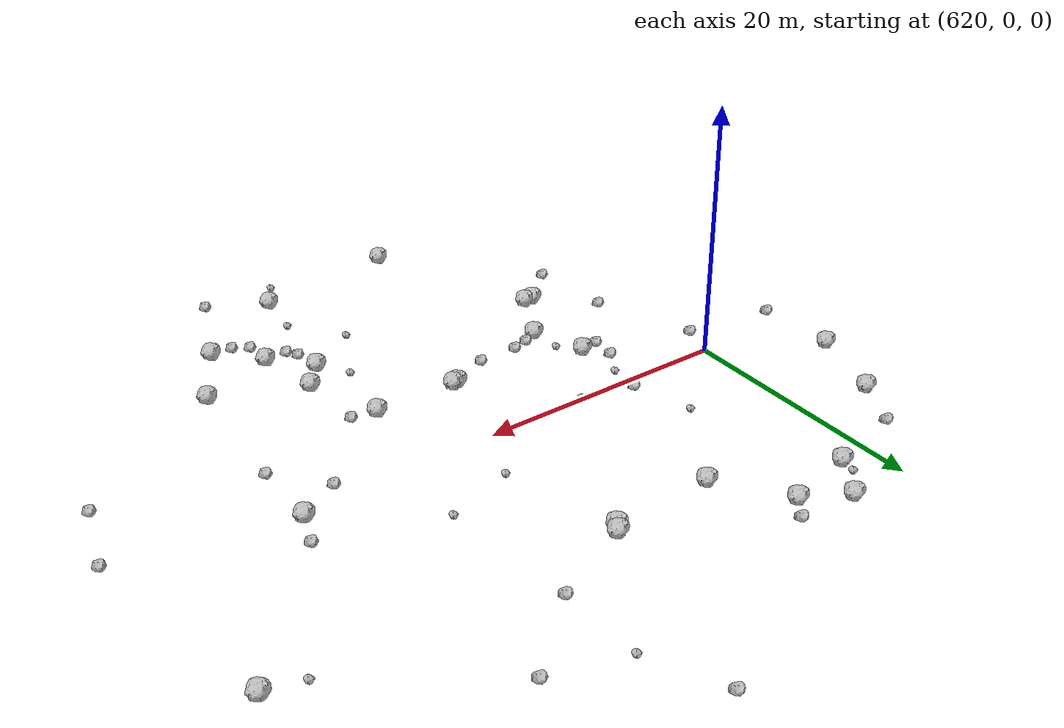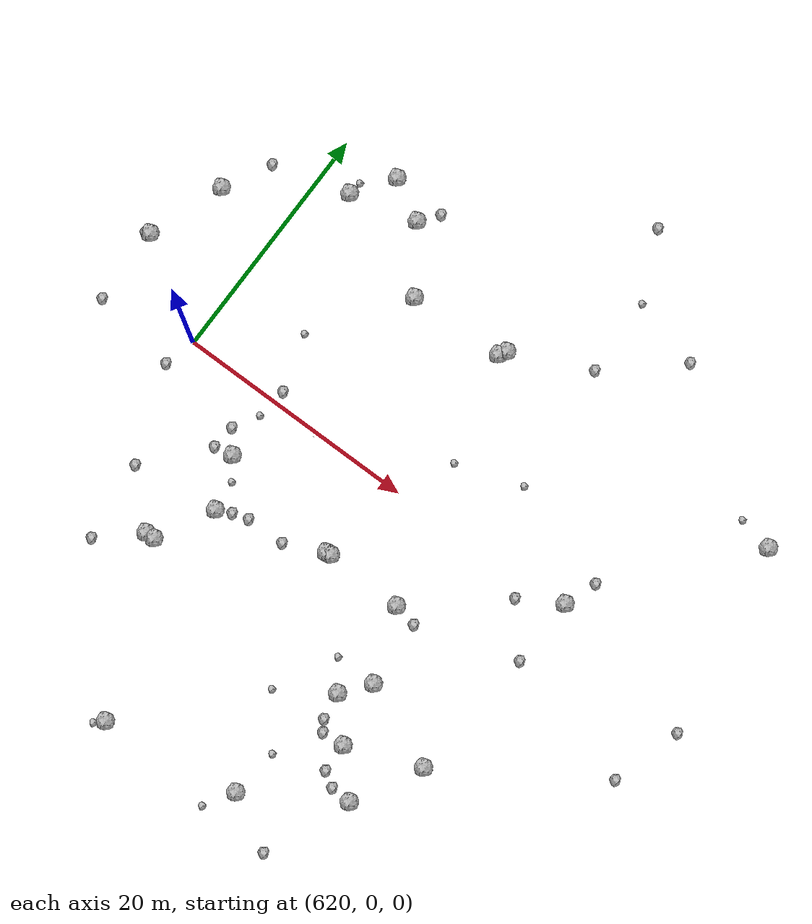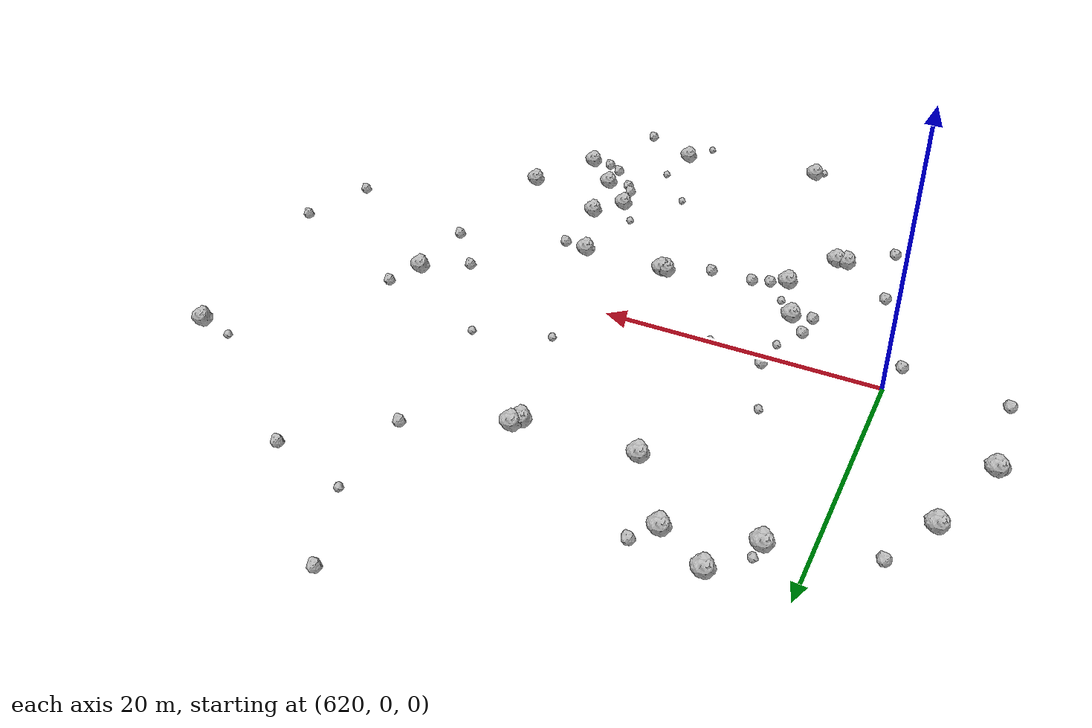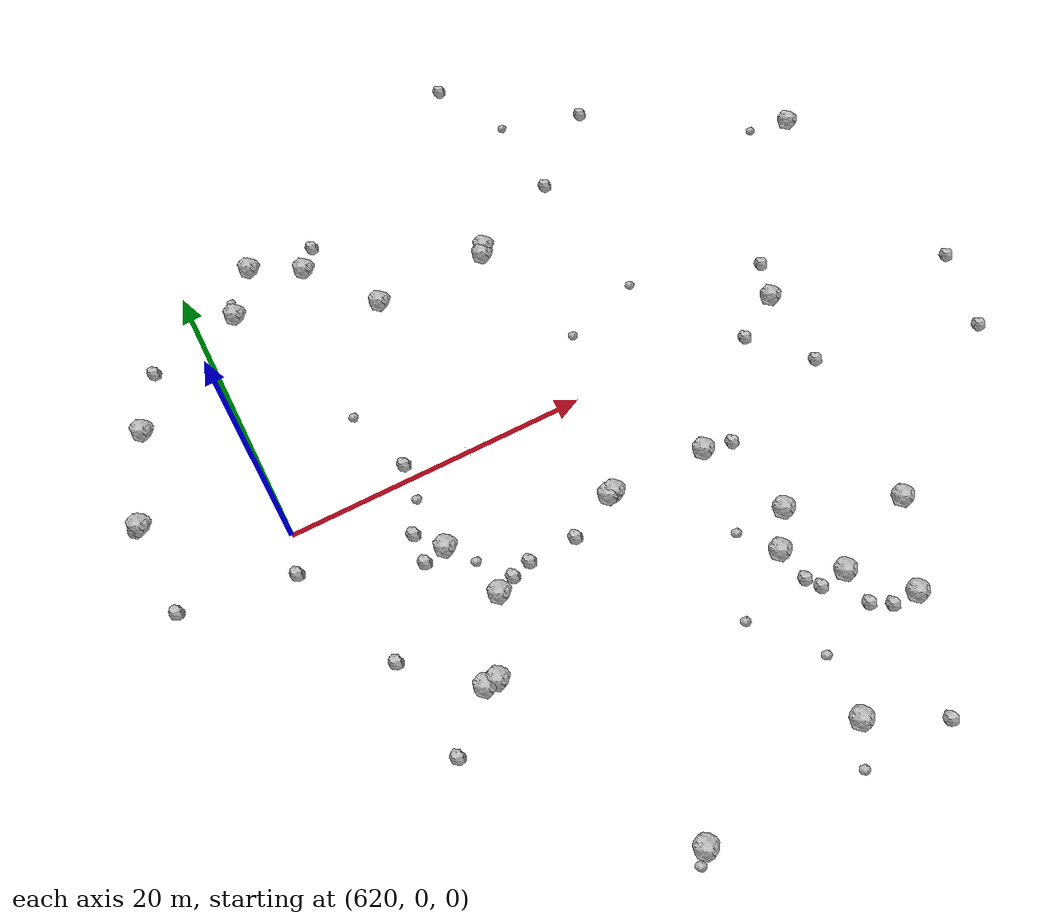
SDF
<sdf version="1.6">
 <world name="default">
  <include><uri>model://sun</uri></include>
  <model name="rock1_16_3">
   <include><uri>model://rock1</uri><pose>645.184223963279 -7.158416719643689 0.5 0 0 0</pose></include>
  </model>
  <model name="rock1_16_4">
   <include><uri>model://rock1</uri><pose>654.2808549519228 -15.91306555644172 0.5 0 0 0</pose></include>
  </model>
  <model name="rock1_16_5">
   <include><uri>model://rock1</uri><pose>647.3512982697109 -13.040447215770598 0.5 0 0 0</pose></include>
  </model>
  <model name="rock1_16_6">
   <include><uri>model://rock1</uri><pose>624.978011408262 20.05931992228546 0.5 0 0 0</pose></include>
  </model>
  <model name="rock1_16_7">
   <include><uri>model://rock1</uri><pose>628.3088314104607 18.204154013835804 0.5 0 0 0</pose></include>
  </model>
  <model name="rock1_16_8">
   <include><uri>model://rock1</uri><pose>665.6137047231888 13.598407059824751 0.5 0 0 0</pose></include>
  </model>
  <model name="rock1_16_9">
   <include><uri>model://rock1</uri><pose>626.1869520709378 -14.147139050641382 0.5 0 0 0</pose></include>
  </model>
  <model name="rock1_16_10">
   <include><uri>model://rock1</uri><pose>622.725477949368 16.840897768645753 0.5 0 0 0</pose></include>
  </model>
  <model name="rock1_16_11">
   <include><uri>model://rock1</uri><pose>612.0574456293614 4.92494065402753 0.5 0 0 0</pose></include>
  </model>
  <model name="rock1_16_12">
   <include><uri>model://rock1</uri><pose>638.7104009253275 -7.010301767099509 0.5 0 0 0</pose></include>
  </model>
  <model name="rock1_16_13">
   <include><uri>model://rock1</uri><pose>645.5829758391136 -15.269566535044454 0.5 0 0 0</pose></include>
  </model>
  <model name="rock1_16_14">
   <include><uri>model://rock1</uri><pose>639.7833441694094 13.399999801528942 0.5 0 0 0</pose></include>
  </model>
  <model name="rock1_16_15">
   <include><uri>model://rock1</uri><pose>629.4307270789877 -9.520268776785812 0.5 0 0 0</pose></include>
  </model>
  <model name="rock1_16_16">
   <include><uri>model://rock1</uri><pose>651.2839073498583 -21.39371891908851 0.5 0 0 0</pose></include>
  </model>
  <model name="rock1_16_17">
   <include><uri>model://rock1</uri><pose>648.3146102809995 -18.213854846935078 0.5 0 0 0</pose></include>
  </model>
  <model name="rock1_16_18">
   <include><uri>model://rock1</uri><pose>626.9665183538259 -14.126910244228753 0.5 0 0 0</pose></include>
  </model>
  <model name="rock1_16_19">
   <include><uri>model://rock1</uri><pose>643.8779136777832 -25.97971697787504 0.5 0 0 0</pose></include>
  </model>
  <model name="rock1_16_20">
   <include><uri>model://rock1</uri><pose>638.3309593525308 -7.053237063512988 0.5 0 0 0</pose></include>
  </model>
  <model name="rock1_16_21">
   <include><uri>model://rock1</uri><pose>631.8061551283555 13.158166369246452 0.5 0 0 0</pose></include>
  </model>
  <model name="rock1_16_22">
   <include><uri>model://rock1</uri><pose>627.8999741047276 -5.321480791683285 0.5 0 0 0</pose></include>
  </model>
  <model name="rock1_16_23">
   <include><uri>model://rock1</uri><pose>640.1714513359095 14.000506917473608 0.5 0 0 0</pose></include>
  </model>
  <model name="rock1_16_24">
   <include><uri>model://rock1</uri><pose>632.5593493753915 -27.595667398039843 0.5 0 0 0</pose></include>
  </model>
  <model name="rock1_16_25">
   <include><uri>model://rock1</uri><pose>655.5354081289428 0.7141678338313469 0.5 0 0 0</pose></include>
  </model>
  <model name="rock1_16_26">
   <include><uri>model://rock1</uri><pose>614.3293566661938 11.202689295116265 0.5 0 0 0</pose></include>
  </model>
  <model name="rock2_16_0">
   <include><uri>model://rock2</uri><pose>666.6116640665798 -7.9235846030345485 0.3 0 0 0</pose></include>
  </model>
  <model name="rock2_16_1">
   <include><uri>model://rock2</uri><pose>648.366404255005 -20.556537926433517 0.3 0 0 0</pose></include>
  </model>
  <model name="rock2_16_2">
   <include><uri>model://rock2</uri><pose>648.3183702211895 -28.37944802548535 0.3 0 0 0</pose></include>
  </model>
  <model name="rock2_16_3">
   <include><uri>model://rock2</uri><pose>652.1593645111894 -1.208391730090625 0.3 0 0 0</pose></include>
  </model>
  <model name="rock2_16_4">
   <include><uri>model://rock2</uri><pose>668.3314475305738 -2.1879337864221178 0.3 0 0 0</pose></include>
  </model>
  <model name="rock2_16_5">
   <include><uri>model://rock2</uri><pose>629.4843495792416 19.783189422289432 0.3 0 0 0</pose></include>
  </model>
  <model name="rock2_16_6">
   <include><uri>model://rock2</uri><pose>647.091911600054 -7.521720993843587 0.3 0 0 0</pose></include>
  </model>
  <model name="rock2_16_7">
   <include><uri>model://rock2</uri><pose>626.3421941643738 -5.585492020690214 0.3 0 0 0</pose></include>
  </model>
  <model name="rock2_16_8">
   <include><uri>model://rock2</uri><pose>616.3637612430392 15.121012470471669 0.3 0 0 0</pose></include>
  </model>
  <model name="rock2_16_9">
   <include><uri>model://rock2</uri><pose>645.8897413703986 -17.471358085604543 0.3 0 0 0</pose></include>
  </model>
  <model name="rock2_16_10">
   <include><uri>model://rock2</uri><pose>652.2031912538663 21.839030655214053 0.3 0 0 0</pose></include>
  </model>
  <model name="rock2_16_11">
   <include><uri>model://rock2</uri><pose>646.4500087496173 -18.340242799514037 0.3 0 0 0</pose></include>
  </model>
  <model name="rock2_16_12">
   <include><uri>model://rock2</uri><pose>626.5136221301932 -3.5820476944143245 0.3 0 0 0</pose></include>
  </model>
  <model name="rock2_16_13">
   <include><uri>model://rock2</uri><pose>628.0082951570895 1.0559462724287911 0.3 0 0 0</pose></include>
  </model>
  <model name="rock2_16_14">
   <include><uri>model://rock2</uri><pose>646.5628519313568 16.911216208514205 0.3 0 0 0</pose></include>
  </model>
  <model name="rock2_16_15">
   <include><uri>model://rock2</uri><pose>630.5969188363416 -8.933751949611032 0.3 0 0 0</pose></include>
  </model>
  <model name="rock2_16_16">
   <include><uri>model://rock2</uri><pose>656.4936870736212 3.405380619462484 0.3 0 0 0</pose></include>
  </model>
  <model name="rock2_16_17">
   <include><uri>model://rock2</uri><pose>655.3261918850302 -4.917528093408055 0.3 0 0 0</pose></include>
  </model>
  <model name="rock2_16_18">
   <include><uri>model://rock2</uri><pose>635.1101373607745 -8.499202832781016 0.3 0 0 0</pose></include>
  </model>
  <model name="rock2_16_19">
   <include><uri>model://rock2</uri><pose>611.6528998803257 4.7841076652933765 0.3 0 0 0</pose></include>
  </model>
  <model name="rock2_16_20">
   <include><uri>model://rock2</uri><pose>619.3055562768478 -2.5820628774121985 0.3 0 0 0</pose></include>
  </model>
  <model name="rock2_16_21">
   <include><uri>model://rock2</uri><pose>612.1476671900193 -1.4412102268198055 0.3 0 0 0</pose></include>
  </model>
  <model name="rock2_16_22">
   <include><uri>model://rock2</uri><pose>643.8522225195914 29.06480292218137 0.3 0 0 0</pose></include>
  </model>
  <model name="rock2_16_23">
   <include><uri>model://rock2</uri><pose>623.0051056742633 -16.963029732750126 0.3 0 0 0</pose></include>
  </model>
  <model name="rock2_16_24">
   <include><uri>model://rock2</uri><pose>622.2506763302372 -10.394119772749178 0.3 0 0 0</pose></include>
  </model>
  <model name="rock2_16_25">
   <include><uri>model://rock2</uri><pose>631.9083805956568 -8.552357208280771 0.3 0 0 0</pose></include>
  </model>
  <model name="rock2_16_26">
   <include><uri>model://rock2</uri><pose>649.5535109362729 -21.301689720038013 0.3 0 0 0</pose></include>
  </model>
  <model name="rock3_16_0">
   <include><uri>model://rock3</uri><pose>642.0878744382981 4.454374496742069 0.2 0 0 0</pose></include>
  </model>
  <model name="rock3_16_1">
   <include><uri>model://rock3</uri><pose>622.8102149184135 17.983201270331755 0.2 0 0 0</pose></include>
  </model>
  <model name="rock3_16_2">
   <include><uri>model://rock3</uri><pose>646.4012971123452 23.39440624049964 0.2 0 0 0</pose></include>
  </model>
  <model name="rock3_16_3">
   <include><uri>model://rock3</uri><pose>632.0274031620954 -0.04380141893335221 0.2 0 0 0</pose></include>
  </model>
  <model name="rock3_16_4">
   <include><uri>model://rock3</uri><pose>644.3129739340399 -22.006664270924688 0.2 0 0 0</pose></include>
  </model>
  <model name="rock3_16_5">
   <include><uri>model://rock3</uri><pose>626.579676486698 5.717054513186447 0.2 0 0 0</pose></include>
  </model>
  <model name="rock3_16_6">
   <include><uri>model://rock3</uri><pose>627.6833084203961 -1.5519358819166804 0.2 0 0 0</pose></include>
  </model>
  <model name="rock3_16_7">
   <include><uri>model://rock3</uri><pose>629.0846566170189 -7.04260439958378 0.2 0 0 0</pose></include>
  </model>
  <model name="rock3_16_8">
   <include><uri>model://rock3</uri><pose>647.5389098122713 6.233977333614682 0.2 0 0 0</pose></include>
  </model>
  <model name="rock3_16_9">
   <include><uri>model://rock3</uri><pose>631.8077885494223 -28.28216475510545 0.2 0 0 0</pose></include>
  </model>
  <model name="rock3_16_10">
   <include><uri>model://rock3</uri><pose>662.7041796269374 14.190698457939405 0.2 0 0 0</pose></include>
  </model>
  <model name="rock3_16_11">
   <include><uri>model://rock3</uri><pose>643.8943922027529 -13.02161827262205 0.2 0 0 0</pose></include>
  </model>
  <model name="rock3_16_12">
   <include><uri>model://rock3</uri><pose>641.2948951237521 -18.04620955738522 0.2 0 0 0</pose></include>
  </model>
  <model name="rock3_16_13">
   <include><uri>model://rock3</uri><pose>642.3876508791585 -28.372338805556637 0.2 0 0 0</pose></include>
  </model>
 </world>
</sdf>
